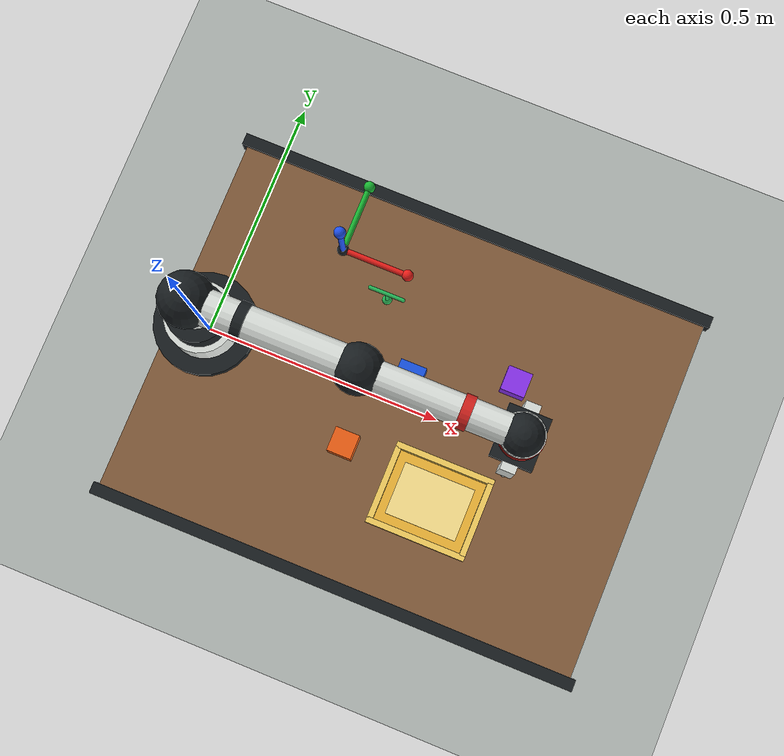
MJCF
<mujoco model="cube_grasp_tabletop">
  <compiler angle="degree" autolimits="true"/>
  <option timestep="0.002" integrator="RK4" gravity="0 0 -9.81"/>

  <default>
    <joint damping="1.2" armature="0.01"/>
    <geom condim="4" friction="1.1 0.03 0.003" solimp="0.95 0.99 0.001" solref="0.006 1"/>
    <position kp="420" kv="36"/>
  </default>

  <asset>
    <texture name="sky" type="skybox" builtin="gradient" rgb1="0.55 0.70 0.95" rgb2="0.96 0.98 1.00" width="512" height="512"/>
    <texture name="floor_grid" type="2d" builtin="checker" rgb1="0.78 0.80 0.78" rgb2="0.63 0.66 0.65" width="512" height="512"/>
    <texture name="wood" type="2d" builtin="checker" rgb1="0.46 0.32 0.20" rgb2="0.58 0.41 0.27" width="512" height="512"/>
    <material name="floor_mat" texture="floor_grid" texrepeat="8 8" reflectance="0.18"/>
    <material name="table_mat" texture="wood" texrepeat="3 2" reflectance="0.08"/>
    <material name="robot_white" rgba="0.88 0.90 0.88 1" specular="0.45" shininess="0.35"/>
    <material name="robot_dark" rgba="0.10 0.12 0.13 1" specular="0.5" shininess="0.45"/>
    <material name="cube_blue" rgba="0.10 0.34 0.92 1" specular="0.35" shininess="0.25"/>
    <material name="cube_orange" rgba="0.95 0.38 0.08 1" specular="0.35" shininess="0.25"/>
    <material name="cube_purple" rgba="0.55 0.20 0.95 1" specular="0.35" shininess="0.25"/>
    <material name="tray_floor" rgba="0.95 0.72 0.22 1" specular="0.35" shininess="0.25"/>
    <material name="tray_wall" rgba="0.98 0.83 0.38 1" specular="0.45" shininess="0.35"/>
    <material name="tray_inner" rgba="1.00 0.90 0.56 1" specular="0.2" shininess="0.18"/>
    <material name="accent_red" rgba="0.85 0.14 0.12 1" specular="0.25" shininess="0.2"/>
    <material name="axis_x" rgba="0.92 0.12 0.10 1" emission="0.08"/>
    <material name="axis_y" rgba="0.10 0.72 0.20 1" emission="0.08"/>
    <material name="axis_z" rgba="0.12 0.32 0.95 1" emission="0.08"/>
    <material name="lift_marker" rgba="0.05 0.95 0.45 0.72" emission="0.08"/>
    <material name="ee_crosshair" rgba="0.00 0.95 1.00 1" emission="0.18"/>
  </asset>

  <worldbody>
    <light name="key" mode="targetbody" target="cube" pos="-1.4 -1.0 2.4" diffuse="0.95 0.90 0.82" specular="0.35 0.35 0.35"/>
    <light name="fill" pos="1.0 0.8 1.4" diffuse="0.25 0.34 0.45" specular="0.05 0.05 0.05"/>
    <camera name="front" pos="0.78 -0.86 0.62" xyaxes="0.8219 0.5651 0.0715 -0.3406 0.3870 0.8569" fovy="44"/>
    <camera name="top_oblique" pos="0.98 -0.25 1.05" xyaxes="0.42 0.91 0 -0.73 0.34 0.59" fovy="42"/>

    <geom name="floor" type="plane" size="2.5 2.5 0.01" material="floor_mat"/>

    <body name="table" pos="0.43 0 0.025">
      <geom name="tabletop" type="box" size="0.50 0.38 0.025" material="table_mat"/>
      <geom name="front_edge" type="box" pos="0 -0.385 0.017" size="0.51 0.012 0.018" material="robot_dark" contype="0" conaffinity="0"/>
      <geom name="back_edge" type="box" pos="0 0.385 0.017" size="0.51 0.012 0.018" material="robot_dark" contype="0" conaffinity="0"/>
    </body>

    <body name="workspace_reference" pos="0.20 0.24 0.083">
      <geom name="ref_origin" type="sphere" size="0.012" material="robot_dark" contype="0" conaffinity="0"/>
      <geom name="ref_x_axis" type="capsule" fromto="0 0 0 0.14 0 0" size="0.006" material="axis_x" contype="0" conaffinity="0"/>
      <geom name="ref_y_axis" type="capsule" fromto="0 0 0 0 0.14 0" size="0.006" material="axis_y" contype="0" conaffinity="0"/>
      <geom name="ref_z_axis" type="capsule" fromto="0 0 0 0 0 0.14" size="0.006" material="axis_z" contype="0" conaffinity="0"/>
      <geom name="ref_x_tip" type="sphere" pos="0.14 0 0" size="0.012" material="axis_x" contype="0" conaffinity="0"/>
      <geom name="ref_y_tip" type="sphere" pos="0 0.14 0" size="0.012" material="axis_y" contype="0" conaffinity="0"/>
      <geom name="ref_z_tip" type="sphere" pos="0 0 0.14" size="0.012" material="axis_z" contype="0" conaffinity="0"/>
    </body>

    <body name="lift_success_reference" pos="0.32 0.18 0.077">
      <geom name="lift_reference_base" type="sphere" size="0.010" material="lift_marker" contype="0" conaffinity="0"/>
      <geom name="lift_reference_height" type="capsule" fromto="0 0 0 0 0 0.058" size="0.004" material="lift_marker" contype="0" conaffinity="0"/>
      <geom name="lift_reference_tick" type="capsule" fromto="-0.035 0 0.058 0.035 0 0.058" size="0.004" material="lift_marker" contype="0" conaffinity="0"/>
    </body>

    <body name="goal_tray" pos="0.55 -0.16 0.052">
      <geom name="tray_base" type="box" pos="0 0 0.004" size="0.095 0.075 0.004" material="tray_floor"/>
      <geom name="tray_inner_highlight" type="box" pos="0 0 0.009" size="0.074 0.054 0.001" material="tray_inner" contype="0" conaffinity="0"/>
      <geom name="tray_front_wall" type="box" pos="0 -0.079 0.018" size="0.103 0.006 0.018" material="tray_wall"/>
      <geom name="tray_back_wall" type="box" pos="0 0.079 0.018" size="0.103 0.006 0.018" material="tray_wall"/>
      <geom name="tray_left_wall" type="box" pos="-0.097 0 0.018" size="0.006 0.075 0.018" material="tray_wall"/>
      <geom name="tray_right_wall" type="box" pos="0.097 0 0.018" size="0.006 0.075 0.018" material="tray_wall"/>
    </body>

    <body name="cube" pos="0.42 0.05 0.077">
      <freejoint name="cube_free"/>
      <geom name="cube_geom" type="box" size="0.027 0.027 0.027" mass="0.045" material="cube_blue"/>
    </body>

    <body name="distractor_cube_orange" pos="0.35 -0.12 0.077">
      <freejoint name="distractor_orange_free"/>
      <geom name="distractor_orange_geom" type="box" size="0.025 0.025 0.025" mass="0.040" material="cube_orange"/>
    </body>

    <body name="distractor_cube_purple" pos="0.62 0.12 0.077">
      <freejoint name="distractor_purple_free"/>
      <geom name="distractor_purple_geom" type="box" size="0.025 0.025 0.025" mass="0.040" material="cube_purple"/>
    </body>

    <body name="robot_base" pos="0 0 0.05">
      <geom name="panda_base_plate" type="cylinder" size="0.105 0.020" material="robot_dark" contype="0" conaffinity="0"/>
      <geom name="panda_base_shell" type="cylinder" pos="0 0 0.045" size="0.072 0.045" material="robot_white" contype="0" conaffinity="0"/>

      <body name="panda_base_yaw" pos="0 0 0.08">
        <joint name="panda_joint1" type="hinge" axis="0 0 1" range="-2.8 2.8"/>
        <geom name="panda_yaw_joint" type="cylinder" pos="0 0 0.030" size="0.060 0.030" material="robot_dark" contype="0" conaffinity="0"/>
        <geom name="panda_shoulder_post" type="capsule" fromto="0 0 0.030 0 0 0.180" size="0.034" material="robot_white" contype="0" conaffinity="0"/>

        <body name="panda_shoulder" pos="0 0 0.180">
          <joint name="panda_joint2" type="hinge" axis="0 -1 0" range="-1.8 1.8"/>
          <geom name="panda_shoulder_joint" type="sphere" size="0.055" material="robot_dark" contype="0" conaffinity="0"/>
          <geom name="panda_upper_arm" type="capsule" fromto="0 0 0 0.340 0 0" size="0.036" material="robot_white" contype="0" conaffinity="0"/>
          <geom name="panda_upper_arm_band" type="cylinder" pos="0.110 0 0" size="0.039 0.010" euler="0 90 0" material="robot_dark" contype="0" conaffinity="0"/>

          <body name="panda_elbow" pos="0.340 0 0">
            <joint name="panda_joint3" type="hinge" axis="0 -1 0" range="-2.5 2.5"/>
            <geom name="panda_elbow_joint" type="sphere" size="0.050" material="robot_dark" contype="0" conaffinity="0"/>
            <geom name="panda_forearm" type="capsule" fromto="0 0 0 0.320 0 0" size="0.031" material="robot_white" contype="0" conaffinity="0"/>
            <geom name="panda_forearm_band" type="cylinder" pos="0.210 0 0" size="0.034 0.010" euler="0 90 0" material="accent_red" contype="0" conaffinity="0"/>

            <body name="panda_wrist" pos="0.320 0 0">
              <joint name="panda_joint4" type="hinge" axis="0 -1 0" range="-2.7 2.7"/>
              <geom name="panda_wrist_joint" type="sphere" size="0.042" material="robot_dark" contype="0" conaffinity="0"/>
              <body name="panda_wrist_yaw" pos="0 0 0">
                <joint name="panda_joint5" type="hinge" axis="0 0 1" range="-2.8 2.8"/>
                <geom name="panda_wrist_yaw_ring" type="cylinder" pos="0 0 -0.018" size="0.044 0.012" material="accent_red" contype="0" conaffinity="0"/>

                <body name="panda_hand" pos="0 0 -0.020">
                  <joint name="panda_joint6" type="hinge" axis="1 0 0" range="-2.8 2.8"/>
                  <geom name="panda_hand_shell" type="cylinder" pos="0 0 0" size="0.043 0.026" material="robot_white" contype="0" conaffinity="0"/>
                  <geom name="panda_palm" type="box" pos="0 0 -0.030" size="0.042 0.052 0.012" material="robot_dark" contype="0" conaffinity="0"/>
                  <geom name="ee_crosshair_x" type="capsule" fromto="-0.032 0 -0.073 0.032 0 -0.073" size="0.0035" material="ee_crosshair" contype="0" conaffinity="0"/>
                  <geom name="ee_crosshair_y" type="capsule" fromto="0 -0.032 -0.073 0 0.032 -0.073" size="0.0035" material="ee_crosshair" contype="0" conaffinity="0"/>
                  <geom name="ee_crosshair_center" type="sphere" pos="0 0 -0.073" size="0.007" material="ee_crosshair" contype="0" conaffinity="0"/>

                  <body name="left_finger" pos="0 0.060 -0.075">
                    <joint name="left_gripper" type="slide" axis="0 -1 0" range="0 0.032"/>
                    <geom name="left_pad" type="box" pos="0 0 0" size="0.015 0.008 0.055" material="robot_white"/>
                    <geom name="left_tip" type="sphere" pos="0 -0.001 -0.055" size="0.011" material="robot_white"/>
                  </body>

                  <body name="right_finger" pos="0 -0.060 -0.075">
                    <joint name="right_gripper" type="slide" axis="0 1 0" range="0 0.032"/>
                    <geom name="right_pad" type="box" pos="0 0 0" size="0.015 0.008 0.055" material="robot_white"/>
                    <geom name="right_tip" type="sphere" pos="0 0.001 -0.055" size="0.011" material="robot_white"/>
                  </body>
                </body>
              </body>
            </body>
          </body>
        </body>
      </body>
    </body>
  </worldbody>

  <actuator>
    <position name="panda_joint1" joint="panda_joint1" ctrlrange="-2.8 2.8" kp="3800" kv="120"/>
    <position name="panda_joint2" joint="panda_joint2" ctrlrange="-1.8 1.8" kp="4600" kv="145"/>
    <position name="panda_joint3" joint="panda_joint3" ctrlrange="-2.5 2.5" kp="4600" kv="145"/>
    <position name="panda_joint4" joint="panda_joint4" ctrlrange="-2.7 2.7" kp="3800" kv="120"/>
    <position name="panda_joint5" joint="panda_joint5" ctrlrange="-2.8 2.8" kp="2200" kv="80"/>
    <position name="panda_joint6" joint="panda_joint6" ctrlrange="-2.8 2.8" kp="2200" kv="80"/>
    <position name="left_finger" joint="left_gripper" ctrlrange="0 0.032" kp="250" kv="18"/>
    <position name="right_finger" joint="right_gripper" ctrlrange="0 0.032" kp="250" kv="18"/>
  </actuator>
</mujoco>
